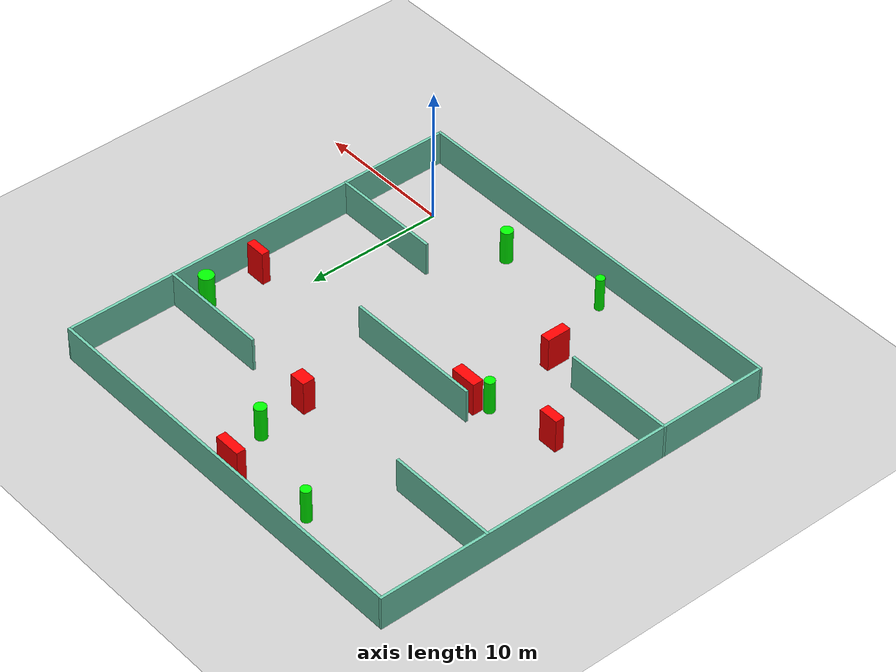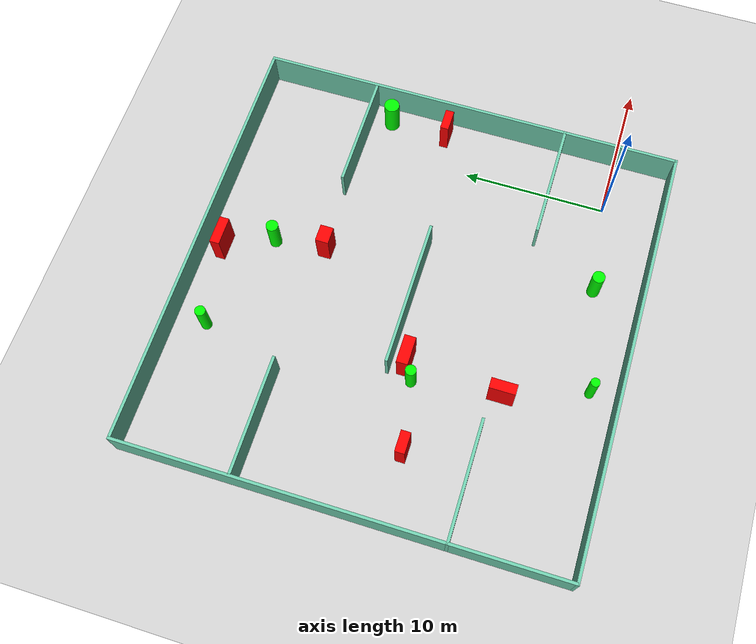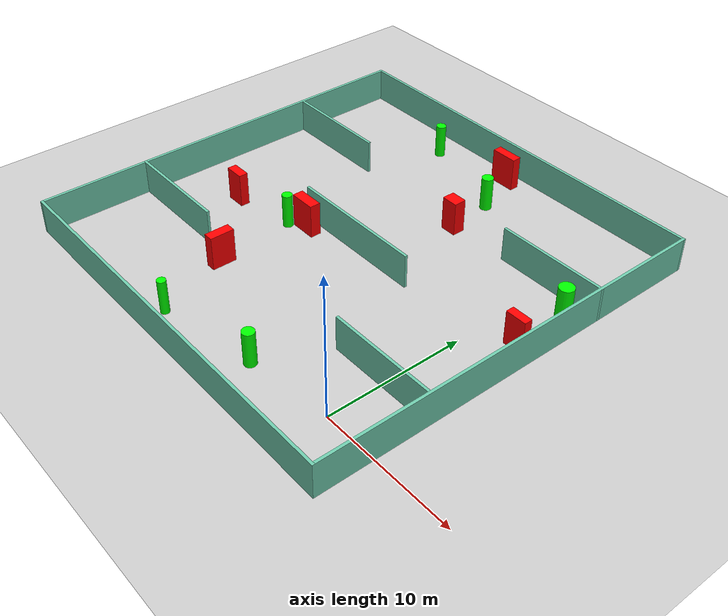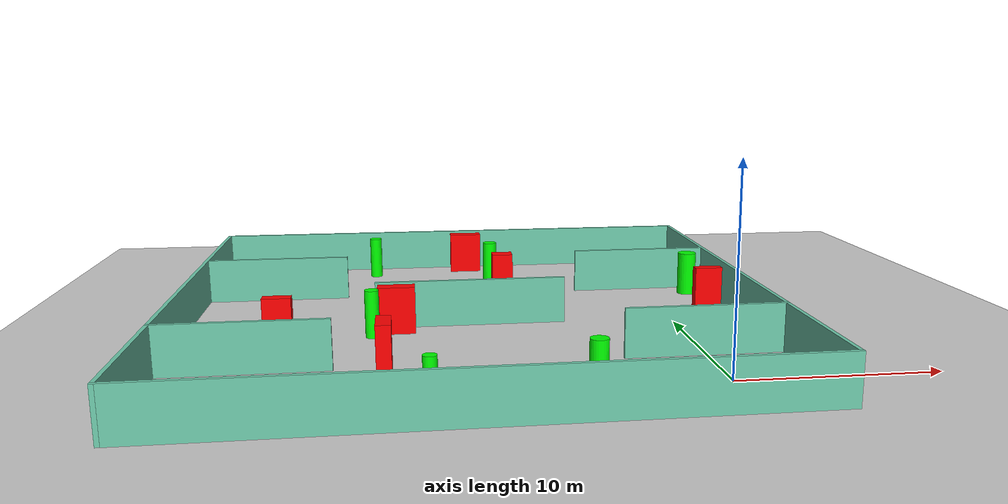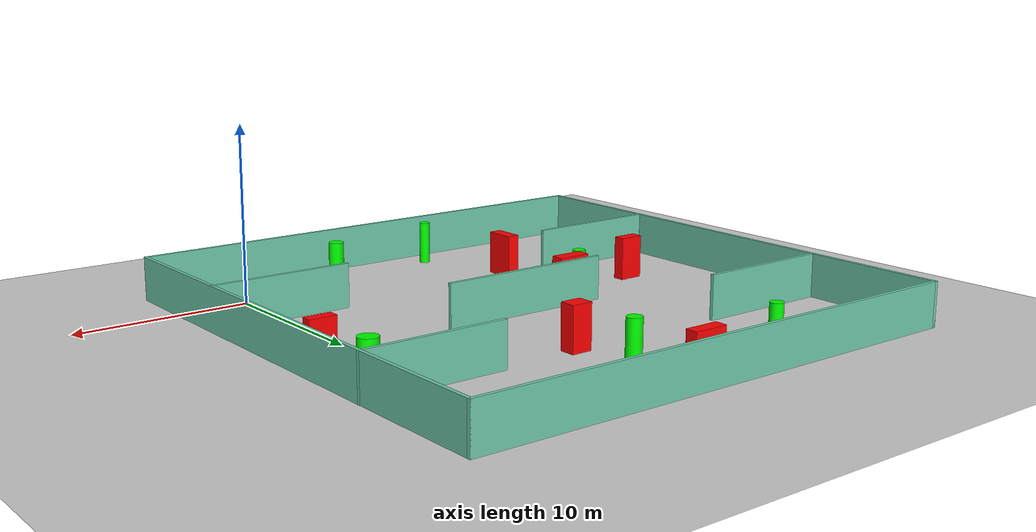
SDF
<sdf version="1.7">
 <world name="default">
  <light name="sun" type="directional">
   <pose>0 0 10 0 -0 0</pose>
   <diffuse>0.8 0.8 0.8 1</diffuse>
   <specular>0.2 0.2 0.2 1</specular>
   <attenuation>
    <range>1000</range>
    <constant>0.9</constant>
    <linear>0.01</linear>
    <quadratic>0.001</quadratic>
   </attenuation>
   <direction>-0.5 0.1 -0.9</direction>
   <spot><inner_angle>0</inner_angle><outer_angle>0</outer_angle><falloff>0</falloff></spot>
  </light>
  <model name="ground_plane">
   <static>1</static>
   <link name="link">
    <collision name="collision">
     <geometry><plane><normal>0 0 1</normal><size>100 100</size></plane></geometry>
     <surface>
      <contact><collide_bitmask>65535</collide_bitmask></contact>
      <friction><ode><mu>100</mu><mu2>50</mu2></ode></friction>
     </surface>
    </collision>
    <visual name="visual">
     <cast_shadows>0</cast_shadows>
     <geometry><plane><normal>0 0 1</normal><size>100 100</size></plane></geometry>
     <material>
      <script><uri>file://media/materials/scripts/gazebo.material</uri><name>Gazebo/Grey</name></script>
     </material>
    </visual>
   </link>
  </model>
  <gravity>0 0 -9.8</gravity>
  <magnetic_field>6e-06 2.3e-05 -4.2e-05</magnetic_field>
  <atmosphere type="adiabatic"/>
  <physics type="ode">
   <max_step_size>0.001</max_step_size>
   <real_time_factor>1</real_time_factor>
   <real_time_update_rate>1000</real_time_update_rate>
  </physics>
  <scene><ambient>0.4 0.4 0.4 1</ambient><background>0.7 0.7 0.7 1</background><shadows>1</shadows></scene>
  <spherical_coordinates>
   <surface_model>EARTH_WGS84</surface_model>
   <latitude_deg>0</latitude_deg>
   <longitude_deg>0</longitude_deg>
   <elevation>0</elevation>
   <heading_deg>0</heading_deg>
  </spherical_coordinates>
  <model name="my_base_walls">
   <link name="Wall_10">
    <collision name="Wall_10_Collision">
     <geometry><box><size>8.2 0.2 2.5</size></box></geometry>
     <pose>0 0 1.25 0 -0 0</pose>
    </collision>
    <visual name="Wall_10_Visual">
     <pose>0 0 1.25 0 -0 0</pose>
     <geometry><box><size>8.2 0.2 2.5</size></box></geometry>
     <material>
      <script><uri>file://media/materials/scripts/gazebo.material</uri><name>Gazebo/Grey</name></script>
      <ambient>0.435294 0.796078 0.67451 1</ambient>
     </material>
     <meta><layer>0</layer></meta>
    </visual>
    <pose>-11 -7 0 0 -0 0</pose>
   </link>
   <link name="Wall_12">
    <collision name="Wall_12_Collision">
     <geometry><box><size>8.2 0.2 2.5</size></box></geometry>
     <pose>0 0 1.25 0 -0 0</pose>
    </collision>
    <visual name="Wall_12_Visual">
     <pose>0 0 1.25 0 -0 0</pose>
     <geometry><box><size>8.2 0.2 2.5</size></box></geometry>
     <material>
      <script><uri>file://media/materials/scripts/gazebo.material</uri><name>Gazebo/Grey</name></script>
      <ambient>0.435294 0.796078 0.67451 1</ambient>
     </material>
     <meta><layer>0</layer></meta>
    </visual>
    <pose>-11 7 0 0 -0 0</pose>
   </link>
   <link name="Wall_14">
    <collision name="Wall_14_Collision">
     <geometry><box><size>8.2 0.2 2.5</size></box></geometry>
     <pose>0 0 1.25 0 -0 0</pose>
    </collision>
    <visual name="Wall_14_Visual">
     <pose>0 0 1.25 0 -0 0</pose>
     <geometry><box><size>8.2 0.2 2.5</size></box></geometry>
     <material>
      <script><uri>file://media/materials/scripts/gazebo.material</uri><name>Gazebo/Grey</name></script>
      <ambient>0.435294 0.796078 0.67451 1</ambient>
     </material>
     <meta><layer>0</layer></meta>
    </visual>
    <pose>11 7 0 0 -0 3.14159</pose>
   </link>
   <link name="Wall_16">
    <collision name="Wall_16_Collision">
     <geometry><box><size>10.2 0.2 2.5</size></box></geometry>
     <pose>0 0 1.25 0 -0 0</pose>
    </collision>
    <visual name="Wall_16_Visual">
     <pose>0 0 1.25 0 -0 0</pose>
     <geometry><box><size>10.2 0.2 2.5</size></box></geometry>
     <material>
      <script><uri>file://media/materials/scripts/gazebo.material</uri><name>Gazebo/Grey</name></script>
      <ambient>0.435294 0.796078 0.67451 1</ambient>
     </material>
     <meta><layer>0</layer></meta>
    </visual>
    <pose>0 0 0 0 -0 3.14159</pose>
   </link>
   <link name="Wall_2">
    <collision name="Wall_2_Collision">
     <geometry><box><size>30.2 0.2 2.5</size></box></geometry>
     <pose>0 0 1.25 0 -0 0</pose>
    </collision>
    <visual name="Wall_2_Visual">
     <pose>0 0 1.25 0 -0 0</pose>
     <geometry><box><size>30.2 0.2 2.5</size></box></geometry>
     <material>
      <script><uri>file://media/materials/scripts/gazebo.material</uri><name>Gazebo/Grey</name></script>
      <ambient>0.435294 0.796078 0.67451 1</ambient>
     </material>
     <meta><layer>0</layer></meta>
    </visual>
    <pose>0 -15 0 0 -0 3.14159</pose>
   </link>
   <link name="Wall_3">
    <collision name="Wall_3_Collision">
     <geometry><box><size>30.2 0.2 2.5</size></box></geometry>
     <pose>0 0 1.25 0 -0 0</pose>
    </collision>
    <visual name="Wall_3_Visual">
     <pose>0 0 1.25 0 -0 0</pose>
     <geometry><box><size>30.2 0.2 2.5</size></box></geometry>
     <material>
      <script><uri>file://media/materials/scripts/gazebo.material</uri><name>Gazebo/Grey</name></script>
      <ambient>0.435294 0.796078 0.67451 1</ambient>
     </material>
     <meta><layer>0</layer></meta>
    </visual>
    <pose>-15 0 0 0 -0 1.5708</pose>
   </link>
   <link name="Wall_4">
    <collision name="Wall_4_Collision">
     <geometry><box><size>30.2 0.2 2.5</size></box></geometry>
     <pose>0 0 1.25 0 -0 0</pose>
    </collision>
    <visual name="Wall_4_Visual">
     <pose>0 0 1.25 0 -0 0</pose>
     <geometry><box><size>30.2 0.2 2.5</size></box></geometry>
     <material>
      <script><uri>file://media/materials/scripts/gazebo.material</uri><name>Gazebo/Grey</name></script>
      <ambient>0.435294 0.796078 0.67451 1</ambient>
     </material>
     <meta><layer>0</layer></meta>
    </visual>
    <pose>0 15 0 0 -0 0</pose>
   </link>
   <link name="Wall_6">
    <collision name="Wall_6_Collision">
     <geometry><box><size>30.2 0.2 2.5</size></box></geometry>
     <pose>0 0 1.25 0 -0 0</pose>
    </collision>
    <visual name="Wall_6_Visual">
     <pose>0 0 1.25 0 -0 0</pose>
     <geometry><box><size>30.2 0.2 2.5</size></box></geometry>
     <material>
      <script><uri>file://media/materials/scripts/gazebo.material</uri><name>Gazebo/Grey</name></script>
      <ambient>0.435294 0.796078 0.67451 1</ambient>
     </material>
     <meta><layer>0</layer></meta>
    </visual>
    <pose>15 0 0 0 -0 1.5708</pose>
   </link>
   <link name="Wall_8">
    <collision name="Wall_8_Collision">
     <geometry><box><size>8.2 0.2 2.5</size></box></geometry>
     <pose>0 0 1.25 0 -0 0</pose>
    </collision>
    <visual name="Wall_8_Visual">
     <pose>0 0 1.25 0 -0 0</pose>
     <geometry><box><size>8.2 0.2 2.5</size></box></geometry>
     <material>
      <script><uri>file://media/materials/scripts/gazebo.material</uri><name>Gazebo/Grey</name></script>
      <ambient>0.435294 0.796078 0.67451 1</ambient>
     </material>
     <meta><layer>0</layer></meta>
    </visual>
    <pose>11 -7 0 0 -0 3.14159</pose>
   </link>
   <static>1</static>
   <pose>-11 11 0 0 -0 0</pose>
  </model>
  <model name="cylinder1">
   <static>1</static>
   <link name="link">
    <inertial>
     <mass>1</mass>
     <inertia><ixx>0.5</ixx><ixy>0</ixy><ixz>0</ixz><iyy>0.5</iyy><iyz>0</iyz><izz>1</izz></inertia>
    </inertial>
    <collision name="collision">
     <geometry><cylinder><radius>0.4308689312330862</radius><length>2.5</length></cylinder></geometry>
    </collision>
    <visual name="visual">
     <geometry><cylinder><radius>0.4308689312330862</radius><length>2.5</length></cylinder></geometry>
     <material>
      <ambient>0 1 0 1</ambient>
      <diffuse>0 1 0 1</diffuse>
      <specular>0.1 0.1 0.1 1</specular>
      <emissive>0 0 0 0</emissive>
     </material>
    </visual>
   </link>
   <pose>-6.299627949924432 -0.7861402499170569 1.25 0 0 0</pose>
  </model>
  <model name="cylinder2">
   <static>1</static>
   <link name="link">
    <inertial>
     <mass>1</mass>
     <inertia><ixx>0.5</ixx><ixy>0</ixy><ixz>0</ixz><iyy>0.5</iyy><iyz>0</iyz><izz>1</izz></inertia>
    </inertial>
    <collision name="collision">
     <geometry><cylinder><radius>0.5356593445094685</radius><length>2.5</length></cylinder></geometry>
    </collision>
    <visual name="visual">
     <geometry><cylinder><radius>0.5356593445094685</radius><length>2.5</length></cylinder></geometry>
     <material>
      <ambient>0 1 0 1</ambient>
      <diffuse>0 1 0 1</diffuse>
      <specular>0.1 0.1 0.1 1</specular>
      <emissive>0 0 0 0</emissive>
     </material>
    </visual>
   </link>
   <pose>2.586637105089096 16.47530535430929 1.25 0 0 0</pose>
  </model>
  <model name="cylinder3">
   <static>1</static>
   <link name="link">
    <inertial>
     <mass>1</mass>
     <inertia><ixx>0.5</ixx><ixy>0</ixy><ixz>0</ixz><iyy>0.5</iyy><iyz>0</iyz><izz>1</izz></inertia>
    </inertial>
    <collision name="collision">
     <geometry><cylinder><radius>0.42186645308848947</radius><length>2.5</length></cylinder></geometry>
    </collision>
    <visual name="visual">
     <geometry><cylinder><radius>0.42186645308848947</radius><length>2.5</length></cylinder></geometry>
     <material>
      <ambient>0 1 0 1</ambient>
      <diffuse>0 1 0 1</diffuse>
      <specular>0.1 0.1 0.1 1</specular>
      <emissive>0 0 0 0</emissive>
     </material>
    </visual>
   </link>
   <pose>-9.08334057733259 21.385603336514194 1.25 0 0 0</pose>
  </model>
  <model name="cylinder4">
   <static>1</static>
   <link name="link">
    <inertial>
     <mass>1</mass>
     <inertia><ixx>0.5</ixx><ixy>0</ixy><ixz>0</ixz><iyy>0.5</iyy><iyz>0</iyz><izz>1</izz></inertia>
    </inertial>
    <collision name="collision">
     <geometry><cylinder><radius>0.31111153502976024</radius><length>2.5</length></cylinder></geometry>
    </collision>
    <visual name="visual">
     <geometry><cylinder><radius>0.31111153502976024</radius><length>2.5</length></cylinder></geometry>
     <material>
      <ambient>0 1 0 1</ambient>
      <diffuse>0 1 0 1</diffuse>
      <specular>0.1 0.1 0.1 1</specular>
      <emissive>0 0 0 0</emissive>
     </material>
    </visual>
   </link>
   <pose>-13.557628903704327 -2.2058057743666817 1.25 0 0 0</pose>
  </model>
  <model name="cylinder5">
   <static>1</static>
   <link name="link">
    <inertial>
     <mass>1</mass>
     <inertia><ixx>0.5</ixx><ixy>0</ixy><ixz>0</ixz><iyy>0.5</iyy><iyz>0</iyz><izz>1</izz></inertia>
    </inertial>
    <collision name="collision">
     <geometry><cylinder><radius>0.36444091226932596</radius><length>2.5</length></cylinder></geometry>
    </collision>
    <visual name="visual">
     <geometry><cylinder><radius>0.36444091226932596</radius><length>2.5</length></cylinder></geometry>
     <material>
      <ambient>0 1 0 1</ambient>
      <diffuse>0 1 0 1</diffuse>
      <specular>0.1 0.1 0.1 1</specular>
      <emissive>0 0 0 0</emissive>
     </material>
    </visual>
   </link>
   <pose>-16.363213427326695 23.741786749191093 1.25 0 0 0</pose>
  </model>
  <model name="cylinder6">
   <static>1</static>
   <link name="link">
    <inertial>
     <mass>1</mass>
     <inertia><ixx>0.5</ixx><ixy>0</ixy><ixz>0</ixz><iyy>0.5</iyy><iyz>0</iyz><izz>1</izz></inertia>
    </inertial>
    <collision name="collision">
     <geometry><cylinder><radius>0.3685889080535663</radius><length>2.5</length></cylinder></geometry>
    </collision>
    <visual name="visual">
     <geometry><cylinder><radius>0.3685889080535663</radius><length>2.5</length></cylinder></geometry>
     <material>
      <ambient>0 1 0 1</ambient>
      <diffuse>0 1 0 1</diffuse>
      <specular>0.1 0.1 0.1 1</specular>
      <emissive>0 0 0 0</emissive>
     </material>
    </visual>
   </link>
   <pose>-16.22358671248744 9.290099034439269 1.25 0 0 0</pose>
  </model>
  <model name="box1">
   <static>1</static>
   <link name="link">
    <inertial>
     <mass>1</mass>
     <inertia><ixx>0.083</ixx><ixy>0</ixy><ixz>0</ixz><iyy>0.083</iyy><iyz>0</iyz><izz>0.083</izz></inertia>
    </inertial>
    <collision name="collision">
     <geometry><box><size>1.5267530761394086 0.5952048540435665 2.5</size></box></geometry>
    </collision>
    <visual name="visual">
     <geometry><box><size>1.5267530761394086 0.5952048540435665 2.5</size></box></geometry>
     <material>
      <ambient>1 0 0 1</ambient>
      <diffuse>1 0 0 1</diffuse>
      <specular>0.1 0.1 0.1 1</specular>
      <emissive>0 0 0 0</emissive>
     </material>
    </visual>
    <sensor name="my_contact" type="contact">
     <contact><collision>box_collision</collision><topic>__default_topic__</topic></contact>
    </sensor>
   </link>
   <pose>2.5909547215754927 12.327256977672931 1.25 0 0 0</pose>
  </model>
  <model name="box2">
   <static>1</static>
   <link name="link">
    <inertial>
     <mass>1</mass>
     <inertia><ixx>0.083</ixx><ixy>0</ixy><ixz>0</ixz><iyy>0.083</iyy><iyz>0</iyz><izz>0.083</izz></inertia>
    </inertial>
    <collision name="collision">
     <geometry><box><size>1.963803956663294 0.6800350686725077 2.5</size></box></geometry>
    </collision>
    <visual name="visual">
     <geometry><box><size>1.963803956663294 0.6800350686725077 2.5</size></box></geometry>
     <material>
      <ambient>1 0 0 1</ambient>
      <diffuse>1 0 0 1</diffuse>
      <specular>0.1 0.1 0.1 1</specular>
      <emissive>0 0 0 0</emissive>
     </material>
    </visual>
    <sensor name="my_contact" type="contact">
     <contact><collision>box_collision</collision><topic>__default_topic__</topic></contact>
    </sensor>
   </link>
   <pose>-10.451276128724057 24.68964033875056 1.25 0 0 0</pose>
  </model>
  <model name="box3">
   <static>1</static>
   <link name="link">
    <inertial>
     <mass>1</mass>
     <inertia><ixx>0.083</ixx><ixy>0</ixy><ixz>0</ixz><iyy>0.083</iyy><iyz>0</iyz><izz>0.083</izz></inertia>
    </inertial>
    <collision name="collision">
     <geometry><box><size>0.7153636374877262 1.7781396970252827 2.5</size></box></geometry>
    </collision>
    <visual name="visual">
     <geometry><box><size>0.7153636374877262 1.7781396970252827 2.5</size></box></geometry>
     <material>
      <ambient>1 0 0 1</ambient>
      <diffuse>1 0 0 1</diffuse>
      <specular>0.1 0.1 0.1 1</specular>
      <emissive>0 0 0 0</emissive>
     </material>
    </visual>
    <sensor name="my_contact" type="contact">
     <contact><collision>box_collision</collision><topic>__default_topic__</topic></contact>
    </sensor>
   </link>
   <pose>-15.521687056080339 3.3235630050742255 1.25 0 0 0</pose>
  </model>
  <model name="box4">
   <static>1</static>
   <link name="link">
    <inertial>
     <mass>1</mass>
     <inertia><ixx>0.083</ixx><ixy>0</ixy><ixz>0</ixz><iyy>0.083</iyy><iyz>0</iyz><izz>0.083</izz></inertia>
    </inertial>
    <collision name="collision">
     <geometry><box><size>1.4417282831593443 0.6687648707125415 2.5</size></box></geometry>
    </collision>
    <visual name="visual">
     <geometry><box><size>1.4417282831593443 0.6687648707125415 2.5</size></box></geometry>
     <material>
      <ambient>1 0 0 1</ambient>
      <diffuse>1 0 0 1</diffuse>
      <specular>0.1 0.1 0.1 1</specular>
      <emissive>0 0 0 0</emissive>
     </material>
    </visual>
    <sensor name="my_contact" type="contact">
     <contact><collision>box_collision</collision><topic>__default_topic__</topic></contact>
    </sensor>
   </link>
   <pose>-20.864249004420948 8.388159038408393 1.25 0 0 0</pose>
  </model>
  <model name="box5">
   <static>1</static>
   <link name="link">
    <inertial>
     <mass>1</mass>
     <inertia><ixx>0.083</ixx><ixy>0</ixy><ixz>0</ixz><iyy>0.083</iyy><iyz>0</iyz><izz>0.083</izz></inertia>
    </inertial>
    <collision name="collision">
     <geometry><box><size>1.201906067709761 0.917190552987952 2.5</size></box></geometry>
    </collision>
    <visual name="visual">
     <geometry><box><size>1.201906067709761 0.917190552987952 2.5</size></box></geometry>
     <material>
      <ambient>1 0 0 1</ambient>
      <diffuse>1 0 0 1</diffuse>
      <specular>0.1 0.1 0.1 1</specular>
      <emissive>0 0 0 0</emissive>
     </material>
    </visual>
    <sensor name="my_contact" type="contact">
     <contact><collision>box_collision</collision><topic>__default_topic__</topic></contact>
    </sensor>
   </link>
   <pose>-8.645636273179456 17.75860801794592 1.25 0 0 0</pose>
  </model>
  <model name="box6">
   <static>1</static>
   <link name="link">
    <inertial>
     <mass>1</mass>
     <inertia><ixx>0.083</ixx><ixy>0</ixy><ixz>0</ixz><iyy>0.083</iyy><iyz>0</iyz><izz>0.083</izz></inertia>
    </inertial>
    <collision name="collision">
     <geometry><box><size>1.9499140397726262 0.7896680597891275 2.5</size></box></geometry>
    </collision>
    <visual name="visual">
     <geometry><box><size>1.9499140397726262 0.7896680597891275 2.5</size></box></geometry>
     <material>
      <ambient>1 0 0 1</ambient>
      <diffuse>1 0 0 1</diffuse>
      <specular>0.1 0.1 0.1 1</specular>
      <emissive>0 0 0 0</emissive>
     </material>
    </visual>
    <sensor name="my_contact" type="contact">
     <contact><collision>box_collision</collision><topic>__default_topic__</topic></contact>
    </sensor>
   </link>
   <pose>-14.972016787145575 9.989051675565355 1.25 0 0 0</pose>
  </model>
 </world>
</sdf>
